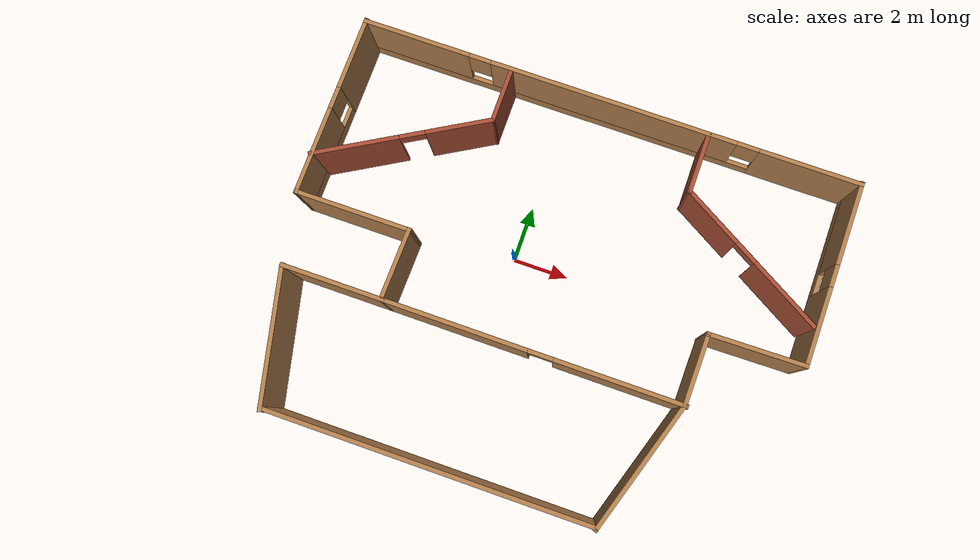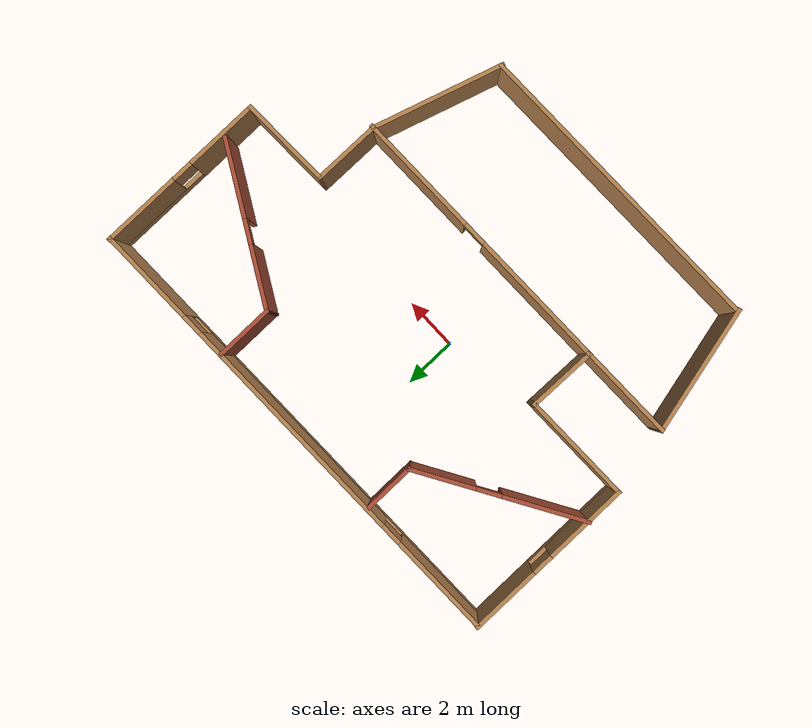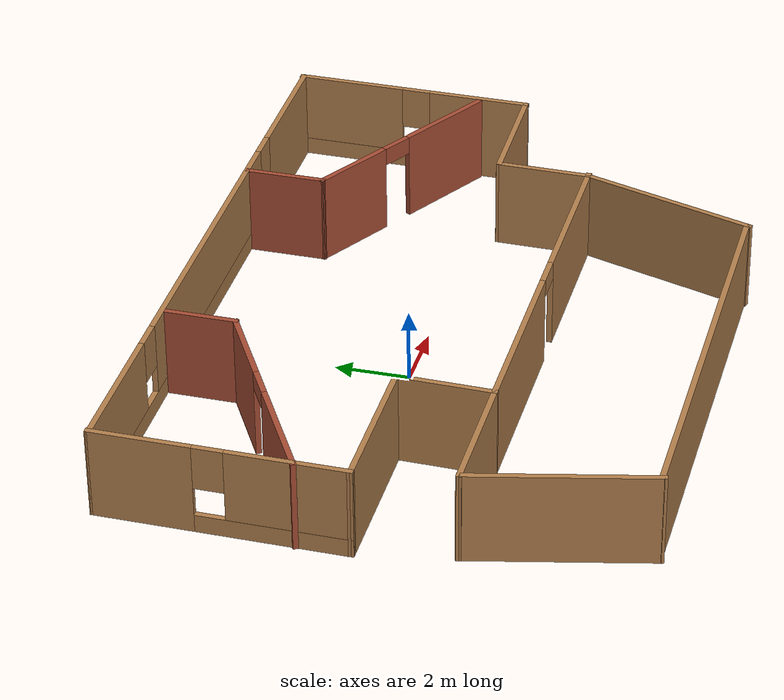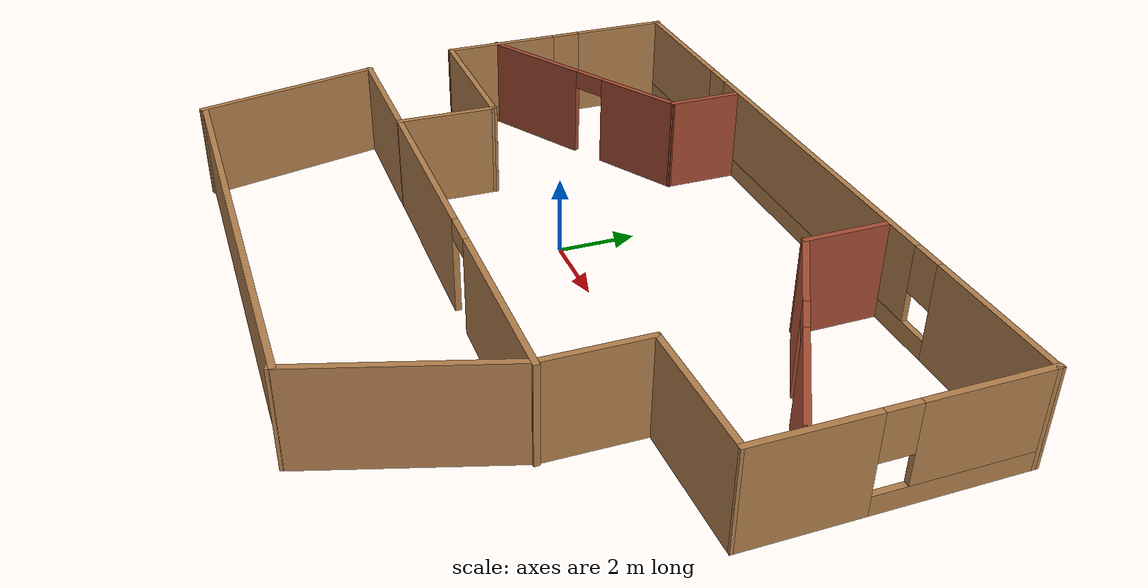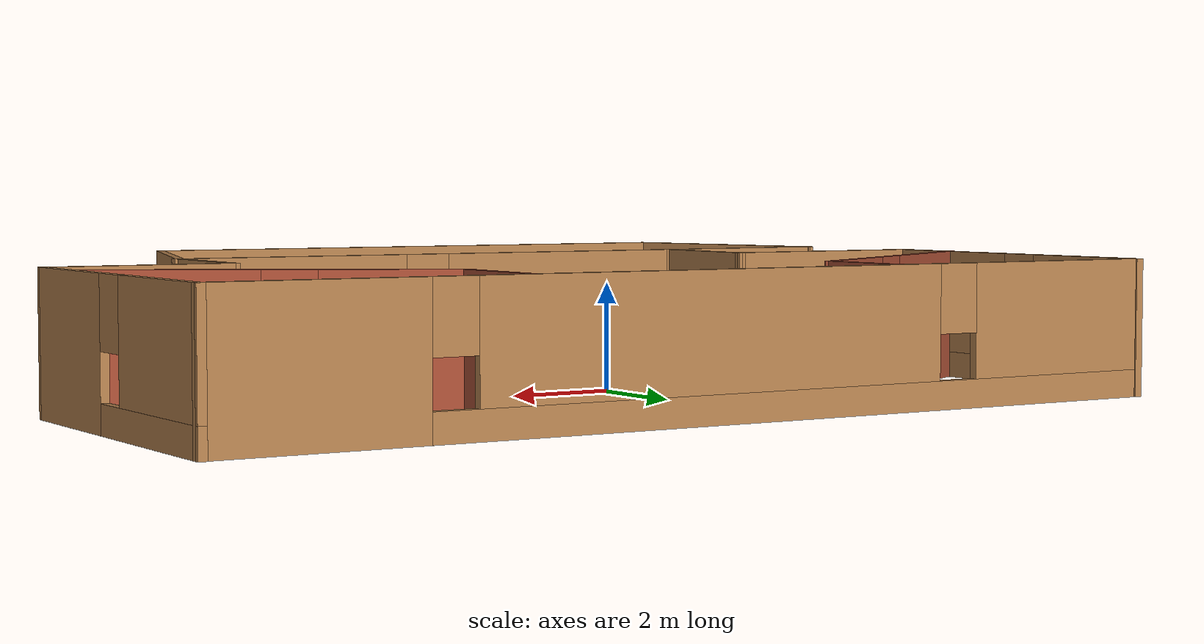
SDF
<?xml version='1.0'?>
<sdf version='1.6'>
  <model name='model'>
    <pose frame=''>1.44998 -0.939664 0 0 -0 0</pose>
    <link name='Wall_10'>
      <pose frame=''>0.395099 -2.195 0 0 0 -0.002483</pose>
      <visual name='Wall_10_Visual_0'>
        <pose frame=''>-2.79411 0 1.25 0 -0 0</pose>
        <geometry>
          <box>
            <size>5.21471 0.15 2.5</size>
          </box>
        </geometry>
        <material>
          <script>
            <uri>file://media/materials/scripts/gazebo.material</uri>
            <name>Gazebo/Wood</name>
          </script>
          <ambient>1 1 1 1</ambient>
        </material>
        <meta>
          <layer>0</layer>
        </meta>
      </visual>
      <collision name='Wall_10_Collision_0'>
        <geometry>
          <box>
            <size>5.21471 0.15 2.5</size>
          </box>
        </geometry>
        <pose frame=''>-2.79411 0 1.25 0 -0 0</pose>
      </collision>
      <visual name='Wall_10_Visual_1'>
        <pose frame=''>3.05736 0 1.25 0 -0 0</pose>
        <geometry>
          <box>
            <size>4.68822 0.15 2.5</size>
          </box>
        </geometry>
        <material>
          <script>
            <uri>file://media/materials/scripts/gazebo.material</uri>
            <name>Gazebo/Wood</name>
          </script>
          <ambient>1 1 1 1</ambient>
        </material>
        <meta>
          <layer>0</layer>
        </meta>
      </visual>
      <collision name='Wall_10_Collision_1'>
        <geometry>
          <box>
            <size>4.68822 0.15 2.5</size>
          </box>
        </geometry>
        <pose frame=''>3.05736 0 1.25 0 -0 0</pose>
      </collision>
      <visual name='Wall_10_Visual_2'>
        <pose frame=''>0.263247 0 2.25 0 -0 0</pose>
        <geometry>
          <box>
            <size>0.9 0.15 0.5</size>
          </box>
        </geometry>
        <material>
          <script>
            <uri>file://media/materials/scripts/gazebo.material</uri>
            <name>Gazebo/Wood</name>
          </script>
          <ambient>1 1 1 1</ambient>
        </material>
        <meta>
          <layer>0</layer>
        </meta>
      </visual>
      <collision name='Wall_10_Collision_2'>
        <geometry>
          <box>
            <size>0.9 0.15 0.5</size>
          </box>
        </geometry>
        <pose frame=''>0.263247 0 2.25 0 -0 0</pose>
      </collision>
    </link>
    <link name='Wall_14'>
      <collision name='Wall_14_Collision'>
        <geometry>
          <box>
            <size>2.64368 0.15 2.5</size>
          </box>
        </geometry>
        <pose frame=''>0 0 1.25 0 -0 0</pose>
      </collision>
      <visual name='Wall_14_Visual'>
        <pose frame=''>0 0 1.25 0 -0 0</pose>
        <geometry>
          <box>
            <size>2.64368 0.15 2.5</size>
          </box>
        </geometry>
        <material>
          <script>
            <uri>file://media/materials/scripts/gazebo.material</uri>
            <name>Gazebo/Wood</name>
          </script>
          <ambient>1 1 1 1</ambient>
        </material>
        <meta>
          <layer>0</layer>
        </meta>
      </visual>
      <pose frame=''>5.68172 -0.961458 0 0 -0 1.56007</pose>
    </link>
    <link name='Wall_16'>
      <collision name='Wall_16_Collision'>
        <geometry>
          <box>
            <size>3.52397 0.15 2.5</size>
          </box>
        </geometry>
        <pose frame=''>0 0 1.25 0 -0 0</pose>
      </collision>
      <visual name='Wall_16_Visual'>
        <pose frame=''>0 0 1.25 0 -0 0</pose>
        <geometry>
          <box>
            <size>3.52397 0.15 2.5</size>
          </box>
        </geometry>
        <material>
          <script>
            <uri>file://media/materials/scripts/gazebo.material</uri>
            <name>Gazebo/Wood</name>
          </script>
          <ambient>1 1 1 1</ambient>
        </material>
        <meta>
          <layer>0</layer>
        </meta>
      </visual>
      <pose frame=''>7.38187 0.311762 0 0 -0 0.01568</pose>
    </link>
    <link name='Wall_18'>
      <collision name='Wall_18_Collision'>
        <geometry>
          <box>
            <size>2.25 0.15 2.5</size>
          </box>
        </geometry>
        <pose frame=''>0 0 1.25 0 -0 0</pose>
      </collision>
      <visual name='Wall_18_Visual'>
        <pose frame=''>0 0 1.25 0 -0 0</pose>
        <geometry>
          <box>
            <size>2.25 0.15 2.5</size>
          </box>
        </geometry>
        <material>
          <script>
            <uri>file://media/materials/scripts/gazebo.material</uri>
            <name>Gazebo/Bricks</name>
          </script>
          <ambient>0 0.333333 1 1</ambient>
        </material>
        <meta>
          <layer>0</layer>
        </meta>
      </visual>
      <pose frame=''>3.63131 5.77992 0 0 0 -1.5708</pose>
    </link>
    <link name='Wall_21'>
      <pose frame=''>6.27269 3.20492 0 0 0 -0.523599</pose>
      <visual name='Wall_21_Visual_0'>
        <pose frame=''>-1.91095 0 1.25 0 -0 0</pose>
        <geometry>
          <box>
            <size>2.4281 0.15 2.5</size>
          </box>
        </geometry>
        <material>
          <script>
            <uri>file://media/materials/scripts/gazebo.material</uri>
            <name>Gazebo/Bricks</name>
          </script>
          <ambient>0.333333 1 0.498039 1</ambient>
        </material>
        <meta>
          <layer>0</layer>
        </meta>
      </visual>
      <collision name='Wall_21_Collision_0'>
        <geometry>
          <box>
            <size>2.4281 0.15 2.5</size>
          </box>
        </geometry>
        <pose frame=''>-1.91095 0 1.25 0 -0 0</pose>
      </collision>
      <visual name='Wall_21_Visual_1'>
        <pose frame=''>1.66405 0 1.25 0 -0 0</pose>
        <geometry>
          <box>
            <size>2.9219 0.15 2.5</size>
          </box>
        </geometry>
        <material>
          <script>
            <uri>file://media/materials/scripts/gazebo.material</uri>
            <name>Gazebo/Bricks</name>
          </script>
          <ambient>0.333333 1 0.498039 1</ambient>
        </material>
        <meta>
          <layer>0</layer>
        </meta>
      </visual>
      <collision name='Wall_21_Collision_1'>
        <geometry>
          <box>
            <size>2.9219 0.15 2.5</size>
          </box>
        </geometry>
        <pose frame=''>1.66405 0 1.25 0 -0 0</pose>
      </collision>
      <visual name='Wall_21_Visual_2'>
        <pose frame=''>-0.246898 0 2.25 0 -0 0</pose>
        <geometry>
          <box>
            <size>0.9 0.15 0.5</size>
          </box>
        </geometry>
        <material>
          <script>
            <uri>file://media/materials/scripts/gazebo.material</uri>
            <name>Gazebo/Bricks</name>
          </script>
          <ambient>0.333333 1 0.498039 1</ambient>
        </material>
        <meta>
          <layer>0</layer>
        </meta>
      </visual>
      <collision name='Wall_21_Collision_2'>
        <geometry>
          <box>
            <size>0.9 0.15 0.5</size>
          </box>
        </geometry>
        <pose frame=''>-0.246898 0 2.25 0 -0 0</pose>
      </collision>
    </link>
    <link name='Wall_23'>
      <collision name='Wall_23_Collision'>
        <geometry>
          <box>
            <size>2 0.15 2.5</size>
          </box>
        </geometry>
        <pose frame=''>0 0 1.25 0 -0 0</pose>
      </collision>
      <visual name='Wall_23_Visual'>
        <pose frame=''>0 0 1.25 0 -0 0</pose>
        <geometry>
          <box>
            <size>2 0.15 2.5</size>
          </box>
        </geometry>
        <material>
          <script>
            <uri>file://media/materials/scripts/gazebo.material</uri>
            <name>Gazebo/Bricks</name>
          </script>
          <ambient>0 0.333333 1 1</ambient>
        </material>
        <meta>
          <layer>0</layer>
        </meta>
      </visual>
      <pose frame=''>-3.56869 5.84492 0 0 0 -1.5708</pose>
    </link>
    <link name='Wall_24'>
      <pose frame=''>-6.31832 3.33242 0 0 0 -2.61799</pose>
      <visual name='Wall_24_Visual_0'>
        <pose frame=''>-2.02747 0 1.25 0 -0 0</pose>
        <geometry>
          <box>
            <size>2.44506 0.15 2.5</size>
          </box>
        </geometry>
        <material>
          <script>
            <uri>file://media/materials/scripts/gazebo.material</uri>
            <name>Gazebo/Bricks</name>
          </script>
          <ambient>0.333333 1 0.498039 1</ambient>
        </material>
        <meta>
          <layer>0</layer>
        </meta>
      </visual>
      <collision name='Wall_24_Collision_0'>
        <geometry>
          <box>
            <size>2.44506 0.15 2.5</size>
          </box>
        </geometry>
        <pose frame=''>-2.02747 0 1.25 0 -0 0</pose>
      </collision>
      <visual name='Wall_24_Visual_1'>
        <pose frame=''>1.67253 0 1.25 0 -0 0</pose>
        <geometry>
          <box>
            <size>3.15494 0.15 2.5</size>
          </box>
        </geometry>
        <material>
          <script>
            <uri>file://media/materials/scripts/gazebo.material</uri>
            <name>Gazebo/Bricks</name>
          </script>
          <ambient>0.333333 1 0.498039 1</ambient>
        </material>
        <meta>
          <layer>0</layer>
        </meta>
      </visual>
      <collision name='Wall_24_Collision_1'>
        <geometry>
          <box>
            <size>3.15494 0.15 2.5</size>
          </box>
        </geometry>
        <pose frame=''>1.67253 0 1.25 0 -0 0</pose>
      </collision>
      <visual name='Wall_24_Visual_2'>
        <pose frame=''>-0.354937 0 2.25 0 -0 0</pose>
        <geometry>
          <box>
            <size>0.9 0.15 0.5</size>
          </box>
        </geometry>
        <material>
          <script>
            <uri>file://media/materials/scripts/gazebo.material</uri>
            <name>Gazebo/Bricks</name>
          </script>
          <ambient>0.333333 1 0.498039 1</ambient>
        </material>
        <meta>
          <layer>0</layer>
        </meta>
      </visual>
      <collision name='Wall_24_Collision_2'>
        <geometry>
          <box>
            <size>0.9 0.15 0.5</size>
          </box>
        </geometry>
        <pose frame=''>-0.354937 0 2.25 0 -0 0</pose>
      </collision>
    </link>
    <link name='Wall_3'>
      <pose frame=''>-9.01813 3.62198 0 0 0 -1.57482</pose>
      <visual name='Wall_3_Visual_0'>
        <pose frame=''>-2.01006 0 1.25 0 -0 0</pose>
        <geometry>
          <box>
            <size>2.69748 0.15 2.5</size>
          </box>
        </geometry>
        <material>
          <script>
            <uri>file://media/materials/scripts/gazebo.material</uri>
            <name>Gazebo/Wood</name>
          </script>
          <ambient>1 1 1 1</ambient>
        </material>
        <meta>
          <layer>0</layer>
        </meta>
      </visual>
      <collision name='Wall_3_Collision_0'>
        <geometry>
          <box>
            <size>2.69748 0.15 2.5</size>
          </box>
        </geometry>
        <pose frame=''>-2.01006 0 1.25 0 -0 0</pose>
      </collision>
      <visual name='Wall_3_Visual_1'>
        <pose frame=''>1.34874 0 0.25 0 -0 0</pose>
        <geometry>
          <box>
            <size>4.02011 0.15 0.5</size>
          </box>
        </geometry>
        <material>
          <script>
            <uri>file://media/materials/scripts/gazebo.material</uri>
            <name>Gazebo/Wood</name>
          </script>
          <ambient>1 1 1 1</ambient>
        </material>
        <meta>
          <layer>0</layer>
        </meta>
      </visual>
      <collision name='Wall_3_Collision_1'>
        <geometry>
          <box>
            <size>4.02011 0.15 0.5</size>
          </box>
        </geometry>
        <pose frame=''>1.34874 0 0.25 0 -0 0</pose>
      </collision>
      <visual name='Wall_3_Visual_2'>
        <pose frame=''>1.74874 0 1.5 0 -0 0</pose>
        <geometry>
          <box>
            <size>3.22011 0.15 2</size>
          </box>
        </geometry>
        <material>
          <script>
            <uri>file://media/materials/scripts/gazebo.material</uri>
            <name>Gazebo/Wood</name>
          </script>
          <ambient>1 1 1 1</ambient>
        </material>
        <meta>
          <layer>0</layer>
        </meta>
      </visual>
      <collision name='Wall_3_Collision_2'>
        <geometry>
          <box>
            <size>3.22011 0.15 2</size>
          </box>
        </geometry>
        <pose frame=''>1.74874 0 1.5 0 -0 0</pose>
      </collision>
      <visual name='Wall_3_Visual_3'>
        <pose frame=''>-0.261314 0 1.9 0 -0 0</pose>
        <geometry>
          <box>
            <size>0.8 0.15 1.2</size>
          </box>
        </geometry>
        <material>
          <script>
            <uri>file://media/materials/scripts/gazebo.material</uri>
            <name>Gazebo/Wood</name>
          </script>
          <ambient>1 1 1 1</ambient>
        </material>
        <meta>
          <layer>0</layer>
        </meta>
      </visual>
      <collision name='Wall_3_Collision_3'>
        <geometry>
          <box>
            <size>0.8 0.15 1.2</size>
          </box>
        </geometry>
        <pose frame=''>-0.261314 0 1.9 0 -0 0</pose>
      </collision>
    </link>
    <link name='Wall_31'>
      <collision name='Wall_31_Collision'>
        <geometry>
          <box>
            <size>3.75 0.15 2.5</size>
          </box>
        </geometry>
        <pose frame=''>0 0 1.25 0 -0 0</pose>
      </collision>
      <visual name='Wall_31_Visual'>
        <pose frame=''>0 0 1.25 0 -0 0</pose>
        <geometry>
          <box>
            <size>3.75 0.15 2.5</size>
          </box>
        </geometry>
        <material>
          <script>
            <uri>file://media/materials/scripts/gazebo.material</uri>
            <name>Gazebo/Wood</name>
          </script>
          <ambient>1 1 1 1</ambient>
        </material>
        <meta>
          <layer>0</layer>
        </meta>
      </visual>
      <pose frame=''>-6.73135 -2.18178 0 0 -0 3.14159</pose>
    </link>
    <link name='Wall_32'>
      <collision name='Wall_32_Collision'>
        <geometry>
          <box>
            <size>4.98526 0.15 2.5</size>
          </box>
        </geometry>
        <pose frame=''>0 0 1.25 0 -0 0</pose>
      </collision>
      <visual name='Wall_32_Visual'>
        <pose frame=''>0 0 1.25 0 -0 0</pose>
        <geometry>
          <box>
            <size>4.98526 0.15 2.5</size>
          </box>
        </geometry>
        <material>
          <script>
            <uri>file://media/materials/scripts/gazebo.material</uri>
            <name>Gazebo/Wood</name>
          </script>
          <ambient>1 1 1 1</ambient>
        </material>
        <meta>
          <layer>0</layer>
        </meta>
      </visual>
      <pose frame=''>-7.97417 -4.53433 0 0 0 -1.33824</pose>
    </link>
    <link name='Wall_34'>
      <collision name='Wall_34_Collision'>
        <geometry>
          <box>
            <size>11.75 0.15 2.5</size>
          </box>
        </geometry>
        <pose frame=''>0 0 1.25 0 -0 0</pose>
      </collision>
      <visual name='Wall_34_Visual'>
        <pose frame=''>0 0 1.25 0 -0 0</pose>
        <geometry>
          <box>
            <size>11.75 0.15 2.5</size>
          </box>
        </geometry>
        <material>
          <script>
            <uri>file://media/materials/scripts/gazebo.material</uri>
            <name>Gazebo/Wood</name>
          </script>
          <ambient>1 1 1 1</ambient>
        </material>
        <meta>
          <layer>0</layer>
        </meta>
      </visual>
      <pose frame=''>-1.61699 -6.83368 0 0 -0 0</pose>
    </link>
    <link name='Wall_35'>
      <collision name='Wall_35_Collision'>
        <geometry>
          <box>
            <size>5.05877 0.15 2.5</size>
          </box>
        </geometry>
        <pose frame=''>0 0 1.25 0 -0 0</pose>
      </collision>
      <visual name='Wall_35_Visual'>
        <pose frame=''>0 0 1.25 0 -0 0</pose>
        <geometry>
          <box>
            <size>5.05877 0.15 2.5</size>
          </box>
        </geometry>
        <material>
          <script>
            <uri>file://media/materials/scripts/gazebo.material</uri>
            <name>Gazebo/Wood</name>
          </script>
          <ambient>1 1 1 1</ambient>
        </material>
        <meta>
          <layer>0</layer>
        </meta>
      </visual>
      <pose frame=''>4.92568 -4.54755 0 0 -0 1.26339</pose>
    </link>
    <link name='Wall_5'>
      <pose frame=''>9.08187 3.62198 0 0 -0 1.56677</pose>
      <visual name='Wall_5_Visual_0'>
        <pose frame=''>-1.92416 0 1.25 0 -0 0</pose>
        <geometry>
          <box>
            <size>2.86927 0.15 2.5</size>
          </box>
        </geometry>
        <material>
          <script>
            <uri>file://media/materials/scripts/gazebo.material</uri>
            <name>Gazebo/Wood</name>
          </script>
          <ambient>1 1 1 1</ambient>
        </material>
        <meta>
          <layer>0</layer>
        </meta>
      </visual>
      <collision name='Wall_5_Collision_0'>
        <geometry>
          <box>
            <size>2.86927 0.15 2.5</size>
          </box>
        </geometry>
        <pose frame=''>-1.92416 0 1.25 0 -0 0</pose>
      </collision>
      <visual name='Wall_5_Visual_1'>
        <pose frame=''>1.43463 0 0.25 0 -0 0</pose>
        <geometry>
          <box>
            <size>3.84833 0.15 0.5</size>
          </box>
        </geometry>
        <material>
          <script>
            <uri>file://media/materials/scripts/gazebo.material</uri>
            <name>Gazebo/Wood</name>
          </script>
          <ambient>1 1 1 1</ambient>
        </material>
        <meta>
          <layer>0</layer>
        </meta>
      </visual>
      <collision name='Wall_5_Collision_1'>
        <geometry>
          <box>
            <size>3.84833 0.15 0.5</size>
          </box>
        </geometry>
        <pose frame=''>1.43463 0 0.25 0 -0 0</pose>
      </collision>
      <visual name='Wall_5_Visual_2'>
        <pose frame=''>1.83463 0 1.5 0 -0 0</pose>
        <geometry>
          <box>
            <size>3.04833 0.15 2</size>
          </box>
        </geometry>
        <material>
          <script>
            <uri>file://media/materials/scripts/gazebo.material</uri>
            <name>Gazebo/Wood</name>
          </script>
          <ambient>1 1 1 1</ambient>
        </material>
        <meta>
          <layer>0</layer>
        </meta>
      </visual>
      <collision name='Wall_5_Collision_2'>
        <geometry>
          <box>
            <size>3.04833 0.15 2</size>
          </box>
        </geometry>
        <pose frame=''>1.83463 0 1.5 0 -0 0</pose>
      </collision>
      <visual name='Wall_5_Visual_3'>
        <pose frame=''>-0.089532 0 1.9 0 -0 0</pose>
        <geometry>
          <box>
            <size>0.8 0.15 1.2</size>
          </box>
        </geometry>
        <material>
          <script>
            <uri>file://media/materials/scripts/gazebo.material</uri>
            <name>Gazebo/Wood</name>
          </script>
          <ambient>1 1 1 1</ambient>
        </material>
        <meta>
          <layer>0</layer>
        </meta>
      </visual>
      <collision name='Wall_5_Collision_3'>
        <geometry>
          <box>
            <size>0.8 0.15 1.2</size>
          </box>
        </geometry>
        <pose frame=''>-0.089532 0 1.9 0 -0 0</pose>
      </collision>
    </link>
    <link name='Wall_6'>
      <pose frame=''>0.045099 6.87931 0 0 -0 3.14159</pose>
      <visual name='Wall_6_Visual_0'>
        <pose frame=''>-7.26438 0 1.25 0 -0 0</pose>
        <geometry>
          <box>
            <size>3.72124 0.15 2.5</size>
          </box>
        </geometry>
        <material>
          <script>
            <uri>file://media/materials/scripts/gazebo.material</uri>
            <name>Gazebo/Wood</name>
          </script>
          <ambient>1 1 1 1</ambient>
        </material>
        <meta>
          <layer>0</layer>
        </meta>
      </visual>
      <collision name='Wall_6_Collision_0'>
        <geometry>
          <box>
            <size>3.72124 0.15 2.5</size>
          </box>
        </geometry>
        <pose frame=''>-7.26438 0 1.25 0 -0 0</pose>
      </collision>
      <visual name='Wall_6_Visual_1'>
        <pose frame=''>1.86062 0 0.25 0 -0 0</pose>
        <geometry>
          <box>
            <size>14.5288 0.15 0.5</size>
          </box>
        </geometry>
        <material>
          <script>
            <uri>file://media/materials/scripts/gazebo.material</uri>
            <name>Gazebo/Wood</name>
          </script>
          <ambient>1 1 1 1</ambient>
        </material>
        <meta>
          <layer>0</layer>
        </meta>
      </visual>
      <collision name='Wall_6_Collision_1'>
        <geometry>
          <box>
            <size>14.5288 0.15 0.5</size>
          </box>
        </geometry>
        <pose frame=''>1.86062 0 0.25 0 -0 0</pose>
      </collision>
      <visual name='Wall_6_Visual_2'>
        <pose frame=''>-0.10932 0 1.5 0 -0 0</pose>
        <geometry>
          <box>
            <size>8.98887 0.15 2</size>
          </box>
        </geometry>
        <material>
          <script>
            <uri>file://media/materials/scripts/gazebo.material</uri>
            <name>Gazebo/Wood</name>
          </script>
          <ambient>1 1 1 1</ambient>
        </material>
        <meta>
          <layer>0</layer>
        </meta>
      </visual>
      <collision name='Wall_6_Collision_2'>
        <geometry>
          <box>
            <size>8.98887 0.15 2</size>
          </box>
        </geometry>
        <pose frame=''>-0.10932 0 1.5 0 -0 0</pose>
      </collision>
      <visual name='Wall_6_Visual_3'>
        <pose frame=''>7.15506 0 1.5 0 -0 0</pose>
        <geometry>
          <box>
            <size>3.93988 0.15 2</size>
          </box>
        </geometry>
        <material>
          <script>
            <uri>file://media/materials/scripts/gazebo.material</uri>
            <name>Gazebo/Wood</name>
          </script>
          <ambient>1 1 1 1</ambient>
        </material>
        <meta>
          <layer>0</layer>
        </meta>
      </visual>
      <collision name='Wall_6_Collision_3'>
        <geometry>
          <box>
            <size>3.93988 0.15 2</size>
          </box>
        </geometry>
        <pose frame=''>7.15506 0 1.5 0 -0 0</pose>
      </collision>
      <visual name='Wall_6_Visual_4'>
        <pose frame=''>-5.00376 0 1.9 0 -0 0</pose>
        <geometry>
          <box>
            <size>0.8 0.15 1.2</size>
          </box>
        </geometry>
        <material>
          <script>
            <uri>file://media/materials/scripts/gazebo.material</uri>
            <name>Gazebo/Wood</name>
          </script>
          <ambient>1 1 1 1</ambient>
        </material>
        <meta>
          <layer>0</layer>
        </meta>
      </visual>
      <collision name='Wall_6_Collision_4'>
        <geometry>
          <box>
            <size>0.8 0.15 1.2</size>
          </box>
        </geometry>
        <pose frame=''>-5.00376 0 1.9 0 -0 0</pose>
      </collision>
      <visual name='Wall_6_Visual_5'>
        <pose frame=''>4.78512 0 1.9 0 -0 0</pose>
        <geometry>
          <box>
            <size>0.8 0.15 1.2</size>
          </box>
        </geometry>
        <material>
          <script>
            <uri>file://media/materials/scripts/gazebo.material</uri>
            <name>Gazebo/Wood</name>
          </script>
          <ambient>1 1 1 1</ambient>
        </material>
        <meta>
          <layer>0</layer>
        </meta>
      </visual>
      <collision name='Wall_6_Collision_5'>
        <geometry>
          <box>
            <size>0.8 0.15 1.2</size>
          </box>
        </geometry>
        <pose frame=''>4.78512 0 1.9 0 -0 0</pose>
      </collision>
    </link>
    <link name='Wall_8'>
      <collision name='Wall_8_Collision'>
        <geometry>
          <box>
            <size>4.25 0.15 2.5</size>
          </box>
        </geometry>
        <pose frame=''>0 0 1.25 0 -0 0</pose>
      </collision>
      <visual name='Wall_8_Visual'>
        <pose frame=''>0 0 1.25 0 -0 0</pose>
        <geometry>
          <box>
            <size>4.25 0.15 2.5</size>
          </box>
        </geometry>
        <material>
          <script>
            <uri>file://media/materials/scripts/gazebo.material</uri>
            <name>Gazebo/Wood</name>
          </script>
          <ambient>1 1 1 1</ambient>
        </material>
        <meta>
          <layer>0</layer>
        </meta>
      </visual>
      <pose frame=''>-6.98135 0.338212 0 0 -0 0</pose>
    </link>
    <link name='Wall_9'>
      <collision name='Wall_9_Collision'>
        <geometry>
          <box>
            <size>2.67055 0.15 2.5</size>
          </box>
        </geometry>
        <pose frame=''>0 0 1.25 0 -0 0</pose>
      </collision>
      <visual name='Wall_9_Visual'>
        <pose frame=''>0 0 1.25 0 -0 0</pose>
        <geometry>
          <box>
            <size>2.67055 0.15 2.5</size>
          </box>
        </geometry>
        <material>
          <script>
            <uri>file://media/materials/scripts/gazebo.material</uri>
            <name>Gazebo/Wood</name>
          </script>
          <ambient>1 1 1 1</ambient>
        </material>
        <meta>
          <layer>0</layer>
        </meta>
      </visual>
      <pose frame=''>-4.95795 -0.921783 0 0 0 -1.5919</pose>
    </link>
    <static>1</static>
  </model>
</sdf>
